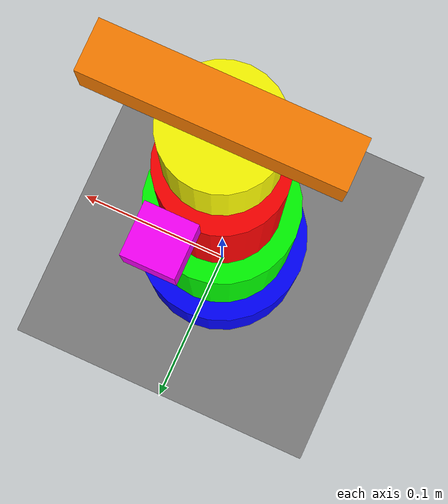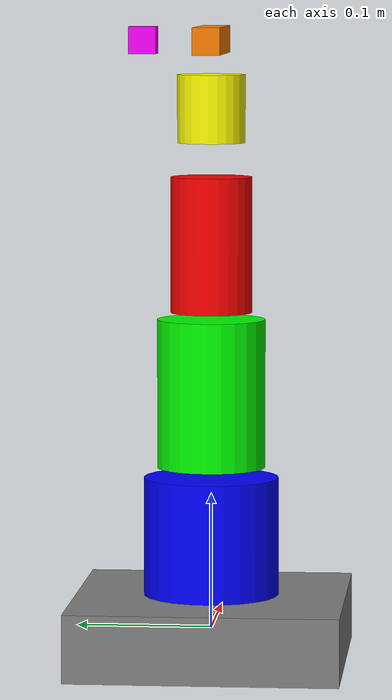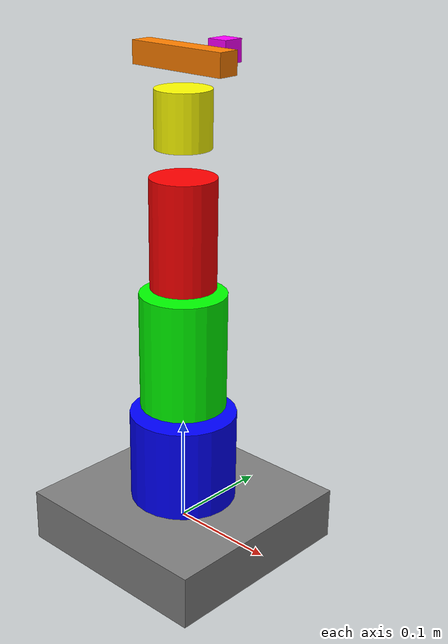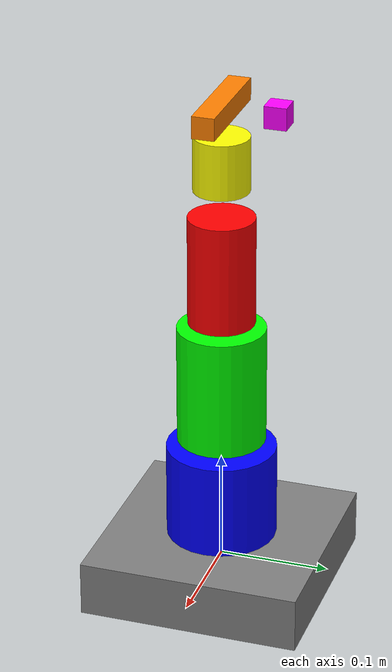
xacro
<?xml version="1.0"?>
<robot xmlns:xacro="http://ros.org/wiki/xacro" name="lewansoul_arm">
  <!-- Dimensions -->
  <xacro:property name="base_height"      value="0.05"/>
  <xacro:property name="shoulder_length" value="0.125"/>
  <xacro:property name="elbow_length"    value="0.11"/>
  <xacro:property name="wrist_length"   value="0.1"/>
  <xacro:property name="gripper_size"   value = "0.1"/>

  <!-- Inertial parameters -->
  <xacro:property name="mass_base" value="0.1"/>
  <xacro:property name="mass_link" value="0.1"/>
  <xacro:property name="ixx"       value="0.03"/>
  <xacro:property name="iyy"       value="0.03"/>
  <xacro:property name="izz"       value="0.03"/>

  <!-- Base link with inertial -->
  <link name="base_link">
    <inertial>
      <origin xyz="0 0 ${base_height/2}" rpy="0 0 0"/>
      <mass value="${mass_base}"/>
      <inertia
        ixx="${ixx}" ixy="0.0" ixz="0.0"
        iyy="${iyy}" iyz="0.0"
        izz="${izz}"/>
    </inertial>
    <visual>
      <geometry>
        <box size="0.2 0.2 ${base_height}"/>
      </geometry>
      <material name="grey">
        <color rgba="0.5 0.5 0.5 1"/>
      </material>
    </visual>
  </link>

  <!-- Joint 1 -->
  <joint name="base_joint" type="revolute">
    <origin xyz="0 0 ${base_height}" rpy="0 0 0"/>
    <parent link="base_link"/>
    <child  link="shoulder_link"/>
    <axis  xyz="0 0 1"/>
    <limit lower="-3.14" upper="3.14" effort="10" velocity="1.0"/>
  </joint>
  <transmission name="base_trans">
    <type>transmission_interface/SimpleTransmission</type>
    <joint name="base_joint">
      <hardwareInterface>position</hardwareInterface>
    </joint>
    <actuator name="base_motor">
      <hardwareInterface>position</hardwareInterface>
    </actuator>
  </transmission>
  <!-- Shoulder link with inertial -->
  <link name="shoulder_link">
    <inertial>
      <origin xyz="0 0 ${shoulder_length}" rpy="0 0 0"/>
      <mass value="${mass_link}"/>
      <inertia
        ixx="${ixx}" ixy="0.0" ixz="0.0"
        iyy="${iyy}" iyz="0.0"
        izz="${izz}"/>
    </inertial>
    <visual>
      <geometry>
        <cylinder length="${shoulder_length}" radius="0.05"/>
      </geometry>
      <material name="blue">
        <color rgba="0 0 1 1"/>
      </material>
    </visual>
  </link>

  <!-- Joint 2 -->
  <joint name="shoulder_joint" type="revolute">
    <origin xyz="0 0 ${shoulder_length}" rpy="0 0 0"/>
    <parent link="shoulder_link"/>
    <child  link="elbow_link"/>
    <axis  xyz="0 1 0"/>
    <limit lower="-1.57" upper="1.57" effort="10" velocity="1.0"/>
  </joint>
  <transmission name="shoulder_trans">
    <type>transmission_interface/SimpleTransmission</type>
    <joint name="shoulder_joint">
      <hardwareInterface>position</hardwareInterface>
    </joint>
    <actuator name="shoulder_motor">
      <hardwareInterface>position</hardwareInterface>
    </actuator>
  </transmission>
  <!-- Elbow link with inertial -->
  <link name="elbow_link">
    <inertial>
      <origin xyz="0 0 ${elbow_length/2}" rpy="0 0 0"/>
      <mass value="${mass_link}"/>
      <inertia
        ixx="${ixx}" ixy="0.0" ixz="0.0"
        iyy="${iyy}" iyz="0.0"
        izz="${izz}"/>
    </inertial>
    <visual>
      <geometry>
        <cylinder length="${elbow_length}" radius="0.04"/>
      </geometry>
      <material name="green">
        <color rgba="0 1 0 1"/>
      </material>
    </visual>
  </link>

  <!-- Joint 3 -->
  <joint name="elbow_joint" type="revolute">
    <origin xyz="0 0 ${elbow_length}" rpy="0 0 0"/>
    <parent link="elbow_link"/>
    <child  link="wrist_pitch_link"/>
    <axis  xyz="0 1 0"/>
    <limit lower="-1.57" upper="1.57" effort="10" velocity="1.0"/>
  </joint>
  <transmission name="elbow_trans">
    <type>transmission_interface/SimpleTransmission</type>
    <joint name="elbow_joint">
      <hardwareInterface>position</hardwareInterface>
    </joint>
    <actuator name="elbow_motor">
      <hardwareInterface>position</hardwareInterface>
    </actuator>
  </transmission>
  <!-- Wrist Pitch Link -->
  <link name="wrist_pitch_link">
  <inertial>
      <origin xyz="0 0 ${base_height/2}" rpy="0 0 0"/>
      <mass value="${mass_base}"/>
      <inertia
        ixx="${ixx}" ixy="0.0" ixz="0.0"
        iyy="${iyy}" iyz="0.0"
        izz="${izz}"/>
    </inertial>
    <visual>
      <geometry>
        <cylinder length="${wrist_length}" radius="0.03"/>
      </geometry>
      <material name="red">
        <color rgba="1 0 0 1"/>
      </material>
    </visual>
  </link>

  <!-- Joint 4: Wrist Pitch Joint (servo 4) -->
  <joint name="wrist_pitch_joint" type="revolute">
    <origin xyz="0 0 ${wrist_length}" rpy="0 0 0"/>
    <parent link="wrist_pitch_link"/>
    <child link="wrist_roll_link"/>
    <axis xyz="0 1 0"/>
    <limit lower="-1.57" upper="1.57" effort="5" velocity="1.0"/>
  </joint>
    <transmission name="wrist_pitch_trans">
    <type>transmission_interface/SimpleTransmission</type>
    <joint name="wrist_pitch_joint">
      <hardwareInterface>position</hardwareInterface>
    </joint>
    <actuator name="wrist_pitch_motor">
      <hardwareInterface>position</hardwareInterface>
    </actuator>
  </transmission>
  <!-- Wrist Roll Link -->
  <link name="wrist_roll_link">
  <inertial>
      <origin xyz="0 0 ${base_height/2}" rpy="0 0 0"/>
      <mass value="${mass_base}"/>
      <inertia
        ixx="${ixx}" ixy="0.0" ixz="0.0"
        iyy="${iyy}" iyz="0.0"
        izz="${izz}"/>
    </inertial>
    <visual>
      <geometry>
        <!-- A shorter link representing the wrist roll -->
        <cylinder length="${wrist_length * 0.5}" radius="0.025"/>
      </geometry>
      <material name="yellow">
        <color rgba="1 1 0 1"/>
      </material>
    </visual>
  </link>

  <!-- Joint 5: Wrist Roll Joint (servo 5) -->
  <joint name="wrist_roll_joint" type="revolute">
    <origin xyz="0 0 ${wrist_length * 0.5}" rpy="0 0 0"/>
    <parent link="wrist_roll_link"/>
    <child link="gripper_link"/>
    <axis xyz="0 0 1"/>
    <limit lower="-3.14" upper="3.14" effort="5" velocity="1.0"/>
  </joint>
    <transmission name="wrist_roll_trans">
    <type>transmission_interface/SimpleTransmission</type>
    <joint name="wrist_roll_joint">
      <hardwareInterface>position</hardwareInterface>
    </joint>
    <actuator name="wrist_roll_motor">
      <hardwareInterface>position</hardwareInterface>
    </actuator>
  </transmission>
  <!-- Gripper Link -->
  <link name="gripper_link">
  <inertial>
      <origin xyz="0 0 ${base_height/2}" rpy="0 0 0"/>
      <mass value="${mass_base}"/>
      <inertia
        ixx="${ixx}" ixy="0.0" ixz="0.0"
        iyy="${iyy}" iyz="0.0"
        izz="${izz}"/>
    </inertial>
    <visual>
      <geometry>
        <box size="${gripper_size} 0.02 0.02"/>
      </geometry>
      <material name="orange">
        <color rgba="1 0.5 0 1"/>
      </material>
    </visual>
  </link>

  <!-- Joint 6: Gripper Joint (servo 1) -->
  <!-- Depending on your design, you might want to control the gripper fingers separately.
       Here we simply add a joint to orient the gripper. -->
  <joint name="gripper_joint" type="revolute">
    <origin xyz="0 ${gripper_size/2} 0" rpy="0 0 0"/>
    <parent link="gripper_link"/>
    <child link="gripper_end"/>
    <axis xyz="0 1 0"/>
    <limit lower="-0.5" upper="0.5" effort="2" velocity="1.0"/>
  </joint>
    <transmission name="gripper_trans">
    <type>transmission_interface/SimpleTransmission</type>
    <joint name="gripper_joint">
      <hardwareInterface>position</hardwareInterface>
    </joint>
    <actuator name="gripper_motor">
      <hardwareInterface>position</hardwareInterface>
    </actuator>
  </transmission>
  <!-- Gripper End: Represents the end-effector for planning -->
  <link name="gripper_end">
  <inertial>
      <origin xyz="0 0 ${base_height/2}" rpy="0 0 0"/>
      <mass value="${mass_base}"/>
      <inertia
        ixx="${ixx}" ixy="0.0" ixz="0.0"
        iyy="${iyy}" iyz="0.0"
        izz="${izz}"/>
    </inertial>
    <visual>
      <geometry>
        <box size="0.02 0.02 0.02"/>
      </geometry>
      <material name="magenta">
        <color rgba="1 0 1 1"/>
      </material>
    </visual>
  </link>

<gazebo>
  <plugin name="gazebo_ros2_control" filename="libgazebo_ros2_control.so"/>
</gazebo>
</robot>
